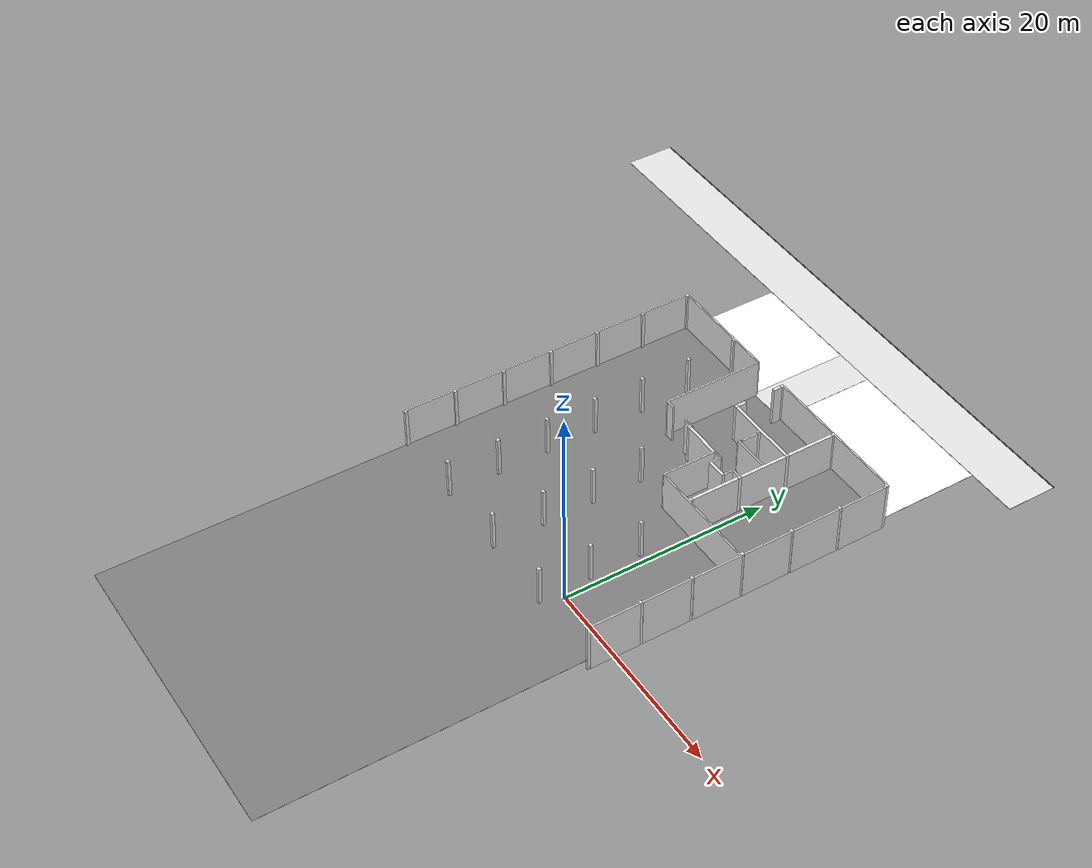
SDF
<sdf version="1.7">
 <model name="TYwalls">
  <pose>0 0 2.5 0 0 0</pose>
  <link name="Wall_E1">
   <pose>-18.75 27.6 0 0 0 0</pose>
   <collision name="Wall_E1_Collision"><geometry><box><size>7.2 0.15 5</size></box></geometry></collision>
   <visual name="Wall_E1_Visual">
    <geometry><box><size>7.2 0.15 5</size></box></geometry>
    <material>
     <ambient>0.9 0.9 0.9 1</ambient>
     <diffuse>0.9 0.9 0.9 1</diffuse>
     <specular>0.9 0.9 0.9 1</specular>
    </material>
    <meta><layer>0</layer></meta>
   </visual>
  </link>
  <link name="Wall_E2">
   <pose>-13.05 27.6 0 0 0 0</pose>
   <collision name="Wall_E2_Collision"><geometry><box><size>3.7 0.15 5</size></box></geometry></collision>
   <visual name="Wall_E2_Visual">
    <geometry><box><size>3.7 0.15 5</size></box></geometry>
    <material>
     <ambient>0.9 0.9 0.9 1</ambient>
     <diffuse>0.9 0.9 0.9 1</diffuse>
     <specular>0.9 0.9 0.9 1</specular>
    </material>
    <meta><layer>0</layer></meta>
   </visual>
  </link>
  <link name="Wall_E3">
   <pose>-3.75 27.6 0 0 0 0</pose>
   <collision name="Wall_E3_Collision"><geometry><box><size>7.2 0.15 5</size></box></geometry></collision>
   <visual name="Wall_E3_Visual">
    <geometry><box><size>7.2 0.15 5</size></box></geometry>
    <material>
     <ambient>0.9 0.9 0.9 1</ambient>
     <diffuse>0.9 0.9 0.9 1</diffuse>
     <specular>0.9 0.9 0.9 1</specular>
    </material>
    <meta><layer>0</layer></meta>
   </visual>
  </link>
  <link name="Wall_E4">
   <pose>3.75 27.6 0 0 0 0</pose>
   <collision name="Wall_E4_Collision"><geometry><box><size>7.2 0.15 5</size></box></geometry></collision>
   <visual name="Wall_E4_Visual">
    <geometry><box><size>7.2 0.15 5</size></box></geometry>
    <material>
     <ambient>0.9 0.9 0.9 1</ambient>
     <diffuse>0.9 0.9 0.9 1</diffuse>
     <specular>0.9 0.9 0.9 1</specular>
    </material>
    <meta><layer>0</layer></meta>
   </visual>
  </link>
  <link name="Wall_S1">
   <pose>7.6 25.0 0 0 0 1.5707</pose>
   <collision name="Wall_S1_Collision"><geometry><box><size>4.7 0.15 5</size></box></geometry></collision>
   <visual name="Wall_S1_Visual">
    <geometry><box><size>4.7 0.15 5</size></box></geometry>
    <material>
     <ambient>0.9 0.9 0.9 1</ambient>
     <diffuse>0.9 0.9 0.9 1</diffuse>
     <specular>0.9 0.9 0.9 1</specular>
    </material>
    <meta><layer>0</layer></meta>
   </visual>
  </link>
  <link name="Wall_S2">
   <pose>7.6 20 0 0 0 1.5707</pose>
   <collision name="Wall_S2_Collision"><geometry><box><size>4.8 0.15 5</size></box></geometry></collision>
   <visual name="Wall_S2_Visual">
    <geometry><box><size>4.8 0.15 5</size></box></geometry>
    <material>
     <ambient>0.9 0.9 0.9 1</ambient>
     <diffuse>0.9 0.9 0.9 1</diffuse>
     <specular>0.9 0.9 0.9 1</specular>
    </material>
    <meta><layer>0</layer></meta>
   </visual>
  </link>
  <link name="Wall_S3">
   <pose>7.6 15.0 0 0 0 1.5707</pose>
   <collision name="Wall_S3_Collision"><geometry><box><size>4.8 0.15 5</size></box></geometry></collision>
   <visual name="Wall_S3_Visual">
    <geometry><box><size>4.8 0.15 5</size></box></geometry>
    <material>
     <ambient>0.9 0.9 0.9 1</ambient>
     <diffuse>0.9 0.9 0.9 1</diffuse>
     <specular>0.9 0.9 0.9 1</specular>
    </material>
    <meta><layer>0</layer></meta>
   </visual>
  </link>
  <link name="Wall_S4">
   <pose>7.6 10.0 0 0 0 1.5707</pose>
   <collision name="Wall_S4_Collision"><geometry><box><size>4.8 0.15 5</size></box></geometry></collision>
   <visual name="Wall_S4_Visual">
    <geometry><box><size>4.8 0.15 5</size></box></geometry>
    <material>
     <ambient>0.9 0.9 0.9 1</ambient>
     <diffuse>0.9 0.9 0.9 1</diffuse>
     <specular>0.9 0.9 0.9 1</specular>
    </material>
    <meta><layer>0</layer></meta>
   </visual>
  </link>
  <link name="Wall_S5">
   <pose>7.6 5.0 0 0 0 1.5707</pose>
   <collision name="Wall_S5_Collision"><geometry><box><size>4.7 0.15 5</size></box></geometry></collision>
   <visual name="Wall_S5_Visual">
    <geometry><box><size>4.7 0.15 5</size></box></geometry>
    <material>
     <ambient>0.9 0.9 0.9 1</ambient>
     <diffuse>0.9 0.9 0.9 1</diffuse>
     <specular>0.9 0.9 0.9 1</specular>
    </material>
    <meta><layer>0</layer></meta>
   </visual>
  </link>
  <link name="Wall_S6">
   <pose>7.6 0 0 0 0 1.5707</pose>
   <collision name="Wall_S6_Collision"><geometry><box><size>4.8 0.15 5</size></box></geometry></collision>
   <visual name="Wall_S6_Visual">
    <geometry><box><size>4.8 0.15 5</size></box></geometry>
    <material>
     <ambient>0.9 0.9 0.9 1</ambient>
     <diffuse>0.9 0.9 0.9 1</diffuse>
     <specular>0.9 0.9 0.9 1</specular>
    </material>
    <meta><layer>0</layer></meta>
   </visual>
  </link>
  <link name="Wall_N1">
   <pose>-22.6 25.0 0 0 0 1.5707</pose>
   <collision name="Wall_N1_Collision"><geometry><box><size>4.7 0.15 5</size></box></geometry></collision>
   <visual name="Wall_N1_Visual">
    <geometry><box><size>4.7 0.15 5</size></box></geometry>
    <material>
     <ambient>0.9 0.9 0.9 1</ambient>
     <diffuse>0.9 0.9 0.9 1</diffuse>
     <specular>0.9 0.9 0.9 1</specular>
    </material>
    <meta><layer>0</layer></meta>
   </visual>
  </link>
  <link name="Wall_N2">
   <pose>-22.6 20 0 0 0 1.5707</pose>
   <collision name="Wall_N2_Collision"><geometry><box><size>4.8 0.15 5</size></box></geometry></collision>
   <visual name="Wall_N2_Visual">
    <geometry><box><size>4.8 0.15 5</size></box></geometry>
    <material>
     <ambient>0.9 0.9 0.9 1</ambient>
     <diffuse>0.9 0.9 0.9 1</diffuse>
     <specular>0.9 0.9 0.9 1</specular>
    </material>
    <meta><layer>0</layer></meta>
   </visual>
  </link>
  <link name="Wall_N3">
   <pose>-22.6 15.0 0 0 0 1.5707</pose>
   <collision name="Wall_N3_Collision"><geometry><box><size>4.8 0.15 5</size></box></geometry></collision>
   <visual name="Wall_N3_Visual">
    <geometry><box><size>4.8 0.15 5</size></box></geometry>
    <material>
     <ambient>0.9 0.9 0.9 1</ambient>
     <diffuse>0.9 0.9 0.9 1</diffuse>
     <specular>0.9 0.9 0.9 1</specular>
    </material>
    <meta><layer>0</layer></meta>
   </visual>
  </link>
  <link name="Wall_N4">
   <pose>-22.6 10.0 0 0 0 1.5707</pose>
   <collision name="Wall_N4_Collision"><geometry><box><size>4.8 0.15 5</size></box></geometry></collision>
   <visual name="Wall_N4_Visual">
    <geometry><box><size>4.8 0.15 5</size></box></geometry>
    <material>
     <ambient>0.9 0.9 0.9 1</ambient>
     <diffuse>0.9 0.9 0.9 1</diffuse>
     <specular>0.9 0.9 0.9 1</specular>
    </material>
    <meta><layer>0</layer></meta>
   </visual>
  </link>
  <link name="Wall_N5">
   <pose>-22.6 5.0 0 0 0 1.5707</pose>
   <collision name="Wall_N5_Collision"><geometry><box><size>4.7 0.15 5</size></box></geometry></collision>
   <visual name="Wall_N5_Visual">
    <geometry><box><size>4.7 0.15 5</size></box></geometry>
    <material>
     <ambient>0.9 0.9 0.9 1</ambient>
     <diffuse>0.9 0.9 0.9 1</diffuse>
     <specular>0.9 0.9 0.9 1</specular>
    </material>
    <meta><layer>0</layer></meta>
   </visual>
  </link>
  <link name="Wall_N6">
   <pose>-22.6 0 0 0 0 1.5707</pose>
   <collision name="Wall_N6_Collision"><geometry><box><size>4.8 0.15 5</size></box></geometry></collision>
   <visual name="Wall_N6_Visual">
    <geometry><box><size>4.8 0.15 5</size></box></geometry>
    <material>
     <ambient>0.9 0.9 0.9 1</ambient>
     <diffuse>0.9 0.9 0.9 1</diffuse>
     <specular>0.9 0.9 0.9 1</specular>
    </material>
    <meta><layer>0</layer></meta>
   </visual>
  </link>
  <link name="Wall_I07">
   <pose>-11.25 22.6 0 0 0 1.5707</pose>
   <collision name="Wall_I07_Collision"><geometry><box><size>9.9 0.15 5</size></box></geometry></collision>
   <visual name="Wall_I07_Visual">
    <geometry><box><size>9.9 0.15 5</size></box></geometry>
    <material>
     <ambient>0.9 0.9 0.9 1</ambient>
     <diffuse>0.9 0.9 0.9 1</diffuse>
     <specular>0.9 0.9 0.9 1</specular>
    </material>
    <meta><layer>0</layer></meta>
   </visual>
  </link>
  <link name="Wall_I08">
   <pose>-10.75 17.725 0 0 0 0</pose>
   <collision name="Wall_I08_Collision"><geometry><box><size>0.85 0.15 5</size></box></geometry></collision>
   <visual name="Wall_I08_Visual">
    <geometry><box><size>0.85 0.15 5</size></box></geometry>
    <material>
     <ambient>0.9 0.9 0.9 1</ambient>
     <diffuse>0.9 0.9 0.9 1</diffuse>
     <specular>0.9 0.9 0.9 1</specular>
    </material>
    <meta><layer>0</layer></meta>
   </visual>
  </link>
  <link name="Wall_I09">
   <pose>-7.9275 17.725 0 0 0 0</pose>
   <collision name="Wall_I09_Collision"><geometry><box><size>1.15 0.15 5</size></box></geometry></collision>
   <visual name="Wall_I09_Visual">
    <geometry><box><size>1.15 0.15 5</size></box></geometry>
    <material>
     <ambient>0.9 0.9 0.9 1</ambient>
     <diffuse>0.9 0.9 0.9 1</diffuse>
     <specular>0.9 0.9 0.9 1</specular>
    </material>
    <meta><layer>0</layer></meta>
   </visual>
  </link>
  <link name="Wall_I10">
   <pose>-5.525 17.5 0 0 0 0</pose>
   <collision name="Wall_I10_Collision"><geometry><box><size>3.675 0.3 5</size></box></geometry></collision>
   <visual name="Wall_I10_Visual">
    <geometry><box><size>3.675 0.3 5</size></box></geometry>
    <material>
     <ambient>0.9 0.9 0.9 1</ambient>
     <diffuse>0.9 0.9 0.9 1</diffuse>
     <specular>0.9 0.9 0.9 1</specular>
    </material>
    <meta><layer>0</layer></meta>
   </visual>
  </link>
  <link name="Wall_I11">
   <pose>-3.75 14.85 0 0 0 1.5707</pose>
   <collision name="Wall_I11_Collision"><geometry><box><size>5.3 0.15 5</size></box></geometry></collision>
   <visual name="Wall_I11_Visual">
    <geometry><box><size>5.3 0.15 5</size></box></geometry>
    <material>
     <ambient>0.9 0.9 0.9 1</ambient>
     <diffuse>0.9 0.9 0.9 1</diffuse>
     <specular>0.9 0.9 0.9 1</specular>
    </material>
    <meta><layer>0</layer></meta>
   </visual>
  </link>
  <link name="Wall_I12">
   <pose>1.925 12.275 0 0 0 0</pose>
   <collision name="Wall_I12_Collision"><geometry><box><size>11.575 0.15 5</size></box></geometry></collision>
   <visual name="Wall_I12_Visual">
    <geometry><box><size>11.475 0.15 5</size></box></geometry>
    <material>
     <ambient>0.9 0.9 0.9 1</ambient>
     <diffuse>0.9 0.9 0.9 1</diffuse>
     <specular>0.9 0.9 0.9 1</specular>
    </material>
    <meta><layer>0</layer></meta>
   </visual>
  </link>
  <link name="Wall_I13">
   <pose>-7.5 26.925 0 0 0 1.5707</pose>
   <collision name="Wall_I13_Collision"><geometry><box><size>0.85 0.3 5</size></box></geometry></collision>
   <visual name="Wall_I13_Visual">
    <geometry><box><size>0.85 0.3 5</size></box></geometry>
    <material>
     <ambient>0.9 0.9 0.9 1</ambient>
     <diffuse>0.9 0.9 0.9 1</diffuse>
     <specular>0.9 0.9 0.9 1</specular>
    </material>
    <meta><layer>0</layer></meta>
   </visual>
  </link>
  <link name="Wall_I14">
   <pose>-7.5 23.075 0 0 0 1.5707</pose>
   <collision name="Wall_I14_Collision"><geometry><box><size>0.85 0.3 5</size></box></geometry></collision>
   <visual name="Wall_I14_Visual">
    <geometry><box><size>0.85 0.3 5</size></box></geometry>
    <material>
     <ambient>0.9 0.9 0.9 1</ambient>
     <diffuse>0.9 0.9 0.9 1</diffuse>
     <specular>0.9 0.9 0.9 1</specular>
    </material>
    <meta><layer>0</layer></meta>
   </visual>
  </link>
  <link name="Wall_I15">
   <pose>-3.75 22.5 0 0 0 0</pose>
   <collision name="Wall_I15_Collision"><geometry><box><size>7.2 0.3 5</size></box></geometry></collision>
   <visual name="Wall_I15_Visual">
    <geometry><box><size>7.2 0.3 5</size></box></geometry>
    <material>
     <ambient>0.9 0.9 0.9 1</ambient>
     <diffuse>0.9 0.9 0.9 1</diffuse>
     <specular>0.9 0.9 0.9 1</specular>
    </material>
    <meta><layer>0</layer></meta>
   </visual>
  </link>
  <link name="Wall_I16">
   <pose>0 25 0 0 0 1.5705</pose>
   <collision name="Wall_I16_Collision"><geometry><box><size>4.7 0.3 5</size></box></geometry></collision>
   <visual name="Wall_I16_Visual">
    <geometry><box><size>4.7 0.3 5</size></box></geometry>
    <material>
     <ambient>0.9 0.9 0.9 1</ambient>
     <diffuse>0.9 0.9 0.9 1</diffuse>
     <specular>0.9 0.9 0.9 1</specular>
    </material>
    <meta><layer>0</layer></meta>
   </visual>
  </link>
  <link name="Wall_I17">
   <pose>0 20 0 0 0 1.5705</pose>
   <collision name="Wall_I17_Collision"><geometry><box><size>4.7 0.3 5</size></box></geometry></collision>
   <visual name="Wall_I17_Visual">
    <geometry><box><size>4.7 0.3 5</size></box></geometry>
    <material>
     <ambient>0.9 0.9 0.9 1</ambient>
     <diffuse>0.9 0.9 0.9 1</diffuse>
     <specular>0.9 0.9 0.9 1</specular>
    </material>
    <meta><layer>0</layer></meta>
   </visual>
  </link>
  <link name="Wall_I18">
   <pose>0 15 0 0 0 1.5705</pose>
   <collision name="Wall_I18_Collision"><geometry><box><size>4.7 0.3 5</size></box></geometry></collision>
   <visual name="Wall_I18_Visual">
    <geometry><box><size>4.7 0.3 5</size></box></geometry>
    <material>
     <ambient>0.9 0.9 0.9 1</ambient>
     <diffuse>0.9 0.9 0.9 1</diffuse>
     <specular>0.9 0.9 0.9 1</specular>
    </material>
    <meta><layer>0</layer></meta>
   </visual>
  </link>
  <link name="Wall_I19">
   <pose>-3.225 17.575 0 0 0 0</pose>
   <collision name="Wall_I19_Collision"><geometry><box><size>1.0 0.15 5</size></box></geometry></collision>
   <visual name="Wall_I19_Visual">
    <geometry><box><size>1.0 0.15 5</size></box></geometry>
    <material>
     <ambient>0.9 0.9 0.9 1</ambient>
     <diffuse>0.9 0.9 0.9 1</diffuse>
     <specular>0.9 0.9 0.9 1</specular>
    </material>
    <meta><layer>0</layer></meta>
   </visual>
  </link>
  <link name="Wall_I20">
   <pose>-0.575 17.575 0 0 0 0</pose>
   <collision name="Wall_I20_Collision"><geometry><box><size>1.0 0.15 5</size></box></geometry></collision>
   <visual name="Wall_I20_Visual">
    <geometry><box><size>1.0 0.15 5</size></box></geometry>
    <material>
     <ambient>0.9 0.9 0.9 1</ambient>
     <diffuse>0.9 0.9 0.9 1</diffuse>
     <specular>0.9 0.9 0.9 1</specular>
    </material>
    <meta><layer>0</layer></meta>
   </visual>
  </link>
  <link name="Wall_I21">
   <pose>-1.9 16.5 0 0 0 0</pose>
   <collision name="Wall_I21_Collision"><geometry><box><size>1.95 0.15 5</size></box></geometry></collision>
   <visual name="Wall_I21_Visual">
    <geometry><box><size>1.95 0.3 5</size></box></geometry>
    <material>
     <ambient>0.9 0.9 0.9 1</ambient>
     <diffuse>0.9 0.9 0.9 1</diffuse>
     <specular>0.9 0.9 0.9 1</specular>
    </material>
    <meta><layer>0</layer></meta>
   </visual>
  </link>
  <link name="Wall_I22">
   <pose>-1 17.0 0 0 0 1.5707</pose>
   <collision name="Wall_I22_Collision"><geometry><box><size>1.0 0.15 5</size></box></geometry></collision>
   <visual name="Wall_I22_Visual">
    <geometry><box><size>1.0 0.15 5</size></box></geometry>
    <material>
     <ambient>0.9 0.9 0.9 1</ambient>
     <diffuse>0.9 0.9 0.9 1</diffuse>
     <specular>0.9 0.9 0.9 1</specular>
    </material>
    <meta><layer>0</layer></meta>
   </visual>
  </link>
  <link name="Wall_I23">
   <pose>-2.8 17.0 0 0 0 1.5707</pose>
   <collision name="Wall_I23_Collision"><geometry><box><size>1.0 0.15 5</size></box></geometry></collision>
   <visual name="Wall_I23_Visual">
    <geometry><box><size>1.0 0.15 5</size></box></geometry>
    <material>
     <ambient>0.9 0.9 0.9 1</ambient>
     <diffuse>0.9 0.9 0.9 1</diffuse>
     <specular>0.9 0.9 0.9 1</specular>
    </material>
    <meta><layer>0</layer></meta>
   </visual>
  </link>
  <link name="Wall_I24">
   <pose>-3.75 22.175 0 0 0 1.5707</pose>
   <collision name="Wall_I24_Collision"><geometry><box><size>0.35 0.15 5</size></box></geometry></collision>
   <visual name="Wall_I24_Visual">
    <geometry><box><size>0.35 0.15 5</size></box></geometry>
    <material>
     <ambient>0.9 0.9 0.9 1</ambient>
     <diffuse>0.9 0.9 0.9 1</diffuse>
     <specular>0.9 0.9 0.9 1</specular>
    </material>
    <meta><layer>0</layer></meta>
   </visual>
  </link>
  <link name="Wall_I25">
   <pose>-3.6 21.15 0 0 0 1.5707</pose>
   <collision name="Wall_I25_Collision"><geometry><box><size>1.65 0.15 5</size></box></geometry></collision>
   <visual name="Wall_I25_Visual">
    <geometry><box><size>1.65 0.15 5</size></box></geometry>
    <material>
     <ambient>0.9 0.9 0.9 1</ambient>
     <diffuse>0.9 0.9 0.9 1</diffuse>
     <specular>0.9 0.9 0.9 1</specular>
    </material>
    <meta><layer>0</layer></meta>
   </visual>
  </link>
  <link name="Wall_I26">
   <pose>-3.75 20.175 0 0 0 1.5707</pose>
   <collision name="Wall_I26_Collision"><geometry><box><size>0.35 0.15 5</size></box></geometry></collision>
   <visual name="Wall_I26_Visual">
    <geometry><box><size>0.35 0.15 5</size></box></geometry>
    <material>
     <ambient>0.9 0.9 0.9 1</ambient>
     <diffuse>0.9 0.9 0.9 1</diffuse>
     <specular>0.9 0.9 0.9 1</specular>
    </material>
    <meta><layer>0</layer></meta>
   </visual>
  </link>
  <link name="Wall_I27">
   <pose>-1.875 20.075 0 0 0 0</pose>
   <collision name="Wall_I27_Collision"><geometry><box><size>3.75 0.15 5</size></box></geometry></collision>
   <visual name="Wall_I27_Visual">
    <geometry><box><size>3.75 0.15 5</size></box></geometry>
    <material>
     <ambient>0.9 0.9 0.9 1</ambient>
     <diffuse>0.9 0.9 0.9 1</diffuse>
     <specular>0.9 0.9 0.9 1</specular>
    </material>
    <meta><layer>0</layer></meta>
   </visual>
  </link>
  <link name="column_01">
   <pose>-22.5 27.5 0 0 0 0</pose>
   <visual name="column_01_visual">
    <geometry><box><size>0.3 0.3 5</size></box></geometry>
    <material>
     <ambient>0.9 0.9 0.9 1</ambient>
     <diffuse>0.9 0.9 0.9 1</diffuse>
     <specular>0.9 0.9 0.9 1</specular>
    </material>
    <meta><layer>0</layer></meta>
   </visual>
   <collision name="collision"><geometry><box><size>0.3 0.3 5</size></box></geometry></collision>
  </link>
  <link name="column_02">
   <pose>-15.0 27.5 0 0 0 0</pose>
   <visual name="column_02_visual">
    <geometry><box><size>0.3 0.3 5</size></box></geometry>
    <material>
     <ambient>0.9 0.9 0.9 1</ambient>
     <diffuse>0.9 0.9 0.9 1</diffuse>
     <specular>0.9 0.9 0.9 1</specular>
    </material>
    <meta><layer>0</layer></meta>
   </visual>
   <collision name="collision"><geometry><box><size>0.3 0.3 5</size></box></geometry></collision>
  </link>
  <link name="column_03">
   <pose>-7.5 27.5 0 0 0 0</pose>
   <visual name="column_03_visual">
    <geometry><box><size>0.3 0.3 5</size></box></geometry>
    <material>
     <ambient>0.9 0.9 0.9 1</ambient>
     <diffuse>0.9 0.9 0.9 1</diffuse>
     <specular>0.9 0.9 0.9 1</specular>
    </material>
    <meta><layer>0</layer></meta>
   </visual>
   <collision name="collision"><geometry><box><size>0.3 0.3 5</size></box></geometry></collision>
  </link>
  <link name="column_04">
   <pose>0 27.5 0 0 0 0</pose>
   <visual name="column_04_visual">
    <geometry><box><size>0.3 0.3 5</size></box></geometry>
    <material>
     <ambient>0.9 0.9 0.9 1</ambient>
     <diffuse>0.9 0.9 0.9 1</diffuse>
     <specular>0.9 0.9 0.9 1</specular>
    </material>
    <meta><layer>0</layer></meta>
   </visual>
   <collision name="collision"><geometry><box><size>0.3 0.3 5</size></box></geometry></collision>
  </link>
  <link name="column_05">
   <pose>7.5 27.5 0 0 -0 0</pose>
   <visual name="column_00_visual">
    <geometry><box><size>0.3 0.3 5</size></box></geometry>
    <material>
     <ambient>0.9 0.9 0.9 1</ambient>
     <diffuse>0.9 0.9 0.9 1</diffuse>
     <specular>0.9 0.9 0.9 1</specular>
    </material>
    <meta><layer>0</layer></meta>
   </visual>
   <collision name="collision"><geometry><box><size>0.3 0.3 5</size></box></geometry></collision>
  </link>
  <link name="column_07">
   <pose>-22.5 22.5 0 0 0 0</pose>
   <visual name="column_07_visual">
    <geometry><box><size>0.3 0.3 5</size></box></geometry>
    <material>
     <ambient>0.9 0.9 0.9 1</ambient>
     <diffuse>0.9 0.9 0.9 1</diffuse>
     <specular>0.9 0.9 0.9 1</specular>
    </material>
    <meta><layer>0</layer></meta>
   </visual>
   <collision name="collision"><geometry><box><size>0.3 0.3 5</size></box></geometry></collision>
  </link>
  <link name="column_08">
   <pose>-15.0 22.5 0 0 0 0</pose>
   <visual name="column_08_visual">
    <geometry><box><size>0.3 0.3 5</size></box></geometry>
    <material>
     <ambient>0.9 0.9 0.9 1</ambient>
     <diffuse>0.9 0.9 0.9 1</diffuse>
     <specular>0.9 0.9 0.9 1</specular>
    </material>
    <meta><layer>0</layer></meta>
   </visual>
   <collision name="collision"><geometry><box><size>0.3 0.3 5</size></box></geometry></collision>
  </link>
  <link name="column_09">
   <pose>-7.5 22.5 0 0 0 0</pose>
   <visual name="column_09_visual">
    <geometry><box><size>0.3 0.3 5</size></box></geometry>
    <material>
     <ambient>0.9 0.9 0.9 1</ambient>
     <diffuse>0.9 0.9 0.9 1</diffuse>
     <specular>0.9 0.9 0.9 1</specular>
    </material>
    <meta><layer>0</layer></meta>
   </visual>
   <collision name="collision"><geometry><box><size>0.3 0.3 5</size></box></geometry></collision>
  </link>
  <link name="column_10">
   <pose>0 22.5 0 0 0 0</pose>
   <visual name="column_010_visual">
    <geometry><box><size>0.3 0.3 5</size></box></geometry>
    <material>
     <ambient>0.9 0.9 0.9 1</ambient>
     <diffuse>0.9 0.9 0.9 1</diffuse>
     <specular>0.9 0.9 0.9 1</specular>
    </material>
    <meta><layer>0</layer></meta>
   </visual>
   <collision name="collision"><geometry><box><size>0.3 0.3 5</size></box></geometry></collision>
  </link>
  <link name="column_11">
   <pose>7.5 22.5 0 0 -0 0</pose>
   <visual name="column_11_visual">
    <geometry><box><size>0.3 0.3 5</size></box></geometry>
    <material>
     <ambient>0.9 0.9 0.9 1</ambient>
     <diffuse>0.9 0.9 0.9 1</diffuse>
     <specular>0.9 0.9 0.9 1</specular>
    </material>
    <meta><layer>0</layer></meta>
   </visual>
   <collision name="collision"><geometry><box><size>0.3 0.3 5</size></box></geometry></collision>
  </link>
  <link name="column_13">
   <pose>-22.5 17.5 0 0 0 0</pose>
   <visual name="column_13_visual">
    <geometry><box><size>0.3 0.3 5</size></box></geometry>
    <material>
     <ambient>0.9 0.9 0.9 1</ambient>
     <diffuse>0.9 0.9 0.9 1</diffuse>
     <specular>0.9 0.9 0.9 1</specular>
    </material>
    <meta><layer>0</layer></meta>
   </visual>
   <collision name="collision"><geometry><box><size>0.3 0.3 5</size></box></geometry></collision>
  </link>
  <link name="column_14">
   <pose>-15.0 17.5 0 0 0 0</pose>
   <visual name="column_14_visual">
    <geometry><box><size>0.3 0.3 5</size></box></geometry>
    <material>
     <ambient>0.9 0.9 0.9 1</ambient>
     <diffuse>0.9 0.9 0.9 1</diffuse>
     <specular>0.9 0.9 0.9 1</specular>
    </material>
    <meta><layer>0</layer></meta>
   </visual>
   <collision name="collision"><geometry><box><size>0.3 0.3 5</size></box></geometry></collision>
  </link>
  <link name="column_15">
   <pose>-7.5 17.5 0 0 0 0</pose>
   <visual name="column_15_visual">
    <geometry><box><size>0.3 0.3 5</size></box></geometry>
    <material>
     <ambient>0.9 0.9 0.9 1</ambient>
     <diffuse>0.9 0.9 0.9 1</diffuse>
     <specular>0.9 0.9 0.9 1</specular>
    </material>
    <meta><layer>0</layer></meta>
   </visual>
   <collision name="collision"><geometry><box><size>0.3 0.3 5</size></box></geometry></collision>
  </link>
  <link name="column_16">
   <pose>0 17.5 0 0 0 0</pose>
   <visual name="column_16_visual">
    <geometry><box><size>0.3 0.3 5</size></box></geometry>
    <material>
     <ambient>0.9 0.9 0.9 1</ambient>
     <diffuse>0.9 0.9 0.9 1</diffuse>
     <specular>0.9 0.9 0.9 1</specular>
    </material>
    <meta><layer>0</layer></meta>
   </visual>
   <collision name="collision"><geometry><box><size>0.3 0.3 5</size></box></geometry></collision>
  </link>
  <link name="column_17">
   <pose>7.5 17.5 0 0 -0 0</pose>
   <visual name="column_17_visual">
    <geometry><box><size>0.3 0.3 5</size></box></geometry>
    <material>
     <ambient>0.9 0.9 0.9 1</ambient>
     <diffuse>0.9 0.9 0.9 1</diffuse>
     <specular>0.9 0.9 0.9 1</specular>
    </material>
    <meta><layer>0</layer></meta>
   </visual>
   <collision name="collision"><geometry><box><size>0.3 0.3 5</size></box></geometry></collision>
  </link>
  <link name="column_19">
   <pose>-22.5 12.5 0 0 0 0</pose>
   <visual name="column_19_visual">
    <geometry><box><size>0.3 0.3 5</size></box></geometry>
    <material>
     <ambient>0.9 0.9 0.9 1</ambient>
     <diffuse>0.9 0.9 0.9 1</diffuse>
     <specular>0.9 0.9 0.9 1</specular>
    </material>
    <meta><layer>0</layer></meta>
   </visual>
   <collision name="collision"><geometry><box><size>0.3 0.3 5</size></box></geometry></collision>
  </link>
  <link name="column_20">
   <pose>-15.0 12.5 0 0 0 0</pose>
   <visual name="column_20_visual">
    <geometry><box><size>0.3 0.3 5</size></box></geometry>
    <material>
     <ambient>0.9 0.9 0.9 1</ambient>
     <diffuse>0.9 0.9 0.9 1</diffuse>
     <specular>0.9 0.9 0.9 1</specular>
    </material>
    <meta><layer>0</layer></meta>
   </visual>
   <collision name="collision"><geometry><box><size>0.3 0.3 5</size></box></geometry></collision>
  </link>
  <link name="column_21">
   <pose>-7.5 12.5 0 0 0 0</pose>
   <visual name="column_21_visual">
    <geometry><box><size>0.3 0.3 5</size></box></geometry>
    <material>
     <ambient>0.9 0.9 0.9 1</ambient>
     <diffuse>0.9 0.9 0.9 1</diffuse>
     <specular>0.9 0.9 0.9 1</specular>
    </material>
    <meta><layer>0</layer></meta>
   </visual>
   <collision name="collision"><geometry><box><size>0.3 0.3 5</size></box></geometry></collision>
  </link>
  <link name="column_22">
   <pose>0 12.5 0 0 0 0</pose>
   <visual name="column_22_visual">
    <geometry><box><size>0.3 0.3 5</size></box></geometry>
    <material>
     <ambient>0.9 0.9 0.9 1</ambient>
     <diffuse>0.9 0.9 0.9 1</diffuse>
     <specular>0.9 0.9 0.9 1</specular>
    </material>
    <meta><layer>0</layer></meta>
   </visual>
   <collision name="collision"><geometry><box><size>0.3 0.3 5</size></box></geometry></collision>
  </link>
  <link name="column_23">
   <pose>7.5 12.5 0 0 -0 0</pose>
   <visual name="column_23_visual">
    <geometry><box><size>0.3 0.3 5</size></box></geometry>
    <material>
     <ambient>0.9 0.9 0.9 1</ambient>
     <diffuse>0.9 0.9 0.9 1</diffuse>
     <specular>0.9 0.9 0.9 1</specular>
    </material>
    <meta><layer>0</layer></meta>
   </visual>
   <collision name="collision"><geometry><box><size>0.3 0.3 5</size></box></geometry></collision>
  </link>
  <link name="column_25">
   <pose>-22.5 7.5 0 0 0 0</pose>
   <visual name="column_25_visual">
    <geometry><box><size>0.3 0.3 5</size></box></geometry>
    <material>
     <ambient>0.9 0.9 0.9 1</ambient>
     <diffuse>0.9 0.9 0.9 1</diffuse>
     <specular>0.9 0.9 0.9 1</specular>
    </material>
    <meta><layer>0</layer></meta>
   </visual>
   <collision name="collision"><geometry><box><size>0.3 0.3 5</size></box></geometry></collision>
  </link>
  <link name="column_26">
   <pose>-15.0 7.5 0 0 0 0</pose>
   <visual name="column_26_visual">
    <geometry><box><size>0.3 0.3 5</size></box></geometry>
    <material>
     <ambient>0.9 0.9 0.9 1</ambient>
     <diffuse>0.9 0.9 0.9 1</diffuse>
     <specular>0.9 0.9 0.9 1</specular>
    </material>
    <meta><layer>0</layer></meta>
   </visual>
   <collision name="collision"><geometry><box><size>0.3 0.3 5</size></box></geometry></collision>
  </link>
  <link name="column_27">
   <pose>-7.5 7.5 0 0 0 0</pose>
   <visual name="column_27_visual">
    <geometry><box><size>0.3 0.3 5</size></box></geometry>
    <material>
     <ambient>0.9 0.9 0.9 1</ambient>
     <diffuse>0.9 0.9 0.9 1</diffuse>
     <specular>0.9 0.9 0.9 1</specular>
    </material>
    <meta><layer>0</layer></meta>
   </visual>
   <collision name="collision"><geometry><box><size>0.3 0.3 5</size></box></geometry></collision>
  </link>
  <link name="column_28">
   <pose>0 7.5 0 0 0 0</pose>
   <visual name="column_28_visual">
    <geometry><box><size>0.3 0.3 5</size></box></geometry>
    <material>
     <ambient>0.9 0.9 0.9 1</ambient>
     <diffuse>0.9 0.9 0.9 1</diffuse>
     <specular>0.9 0.9 0.9 1</specular>
    </material>
    <meta><layer>0</layer></meta>
   </visual>
   <collision name="collision"><geometry><box><size>0.3 0.3 5</size></box></geometry></collision>
  </link>
  <link name="column_29">
   <pose>7.5 7.5 0 0 -0 0</pose>
   <visual name="column_29_visual">
    <geometry><box><size>0.3 0.3 5</size></box></geometry>
    <material>
     <ambient>0.9 0.9 0.9 1</ambient>
     <diffuse>0.9 0.9 0.9 1</diffuse>
     <specular>0.9 0.9 0.9 1</specular>
    </material>
    <meta><layer>0</layer></meta>
   </visual>
   <collision name="collision"><geometry><box><size>0.3 0.3 5</size></box></geometry></collision>
  </link>
  <link name="column_31">
   <pose>-22.5 2.5 0 0 0 0</pose>
   <visual name="column_31_visual">
    <geometry><box><size>0.3 0.3 5</size></box></geometry>
    <material>
     <ambient>0.9 0.9 0.9 1</ambient>
     <diffuse>0.9 0.9 0.9 1</diffuse>
     <specular>0.9 0.9 0.9 1</specular>
    </material>
    <meta><layer>0</layer></meta>
   </visual>
   <collision name="collision"><geometry><box><size>0.3 0.3 5</size></box></geometry></collision>
  </link>
  <link name="column_32">
   <pose>-15.0 2.5 0 0 0 0</pose>
   <visual name="column_32_visual">
    <geometry><box><size>0.3 0.3 5</size></box></geometry>
    <material>
     <ambient>0.9 0.9 0.9 1</ambient>
     <diffuse>0.9 0.9 0.9 1</diffuse>
     <specular>0.9 0.9 0.9 1</specular>
    </material>
    <meta><layer>0</layer></meta>
   </visual>
   <collision name="collision"><geometry><box><size>0.3 0.3 5</size></box></geometry></collision>
  </link>
  <link name="column_33">
   <pose>-7.5 2.5 0 0 0 0</pose>
   <visual name="column_33_visual">
    <geometry><box><size>0.3 0.3 5</size></box></geometry>
    <material>
     <ambient>0.9 0.9 0.9 1</ambient>
     <diffuse>0.9 0.9 0.9 1</diffuse>
     <specular>0.9 0.9 0.9 1</specular>
    </material>
    <meta><layer>0</layer></meta>
   </visual>
   <collision name="collision"><geometry><box><size>0.3 0.3 5</size></box></geometry></collision>
  </link>
  <link name="column_34">
   <pose>0 2.5 0 0 0 0</pose>
   <visual name="column_34_visual">
    <geometry><box><size>0.3 0.3 5</size></box></geometry>
    <material>
     <ambient>0.9 0.9 0.9 1</ambient>
     <diffuse>0.9 0.9 0.9 1</diffuse>
     <specular>0.9 0.9 0.9 1</specular>
    </material>
    <meta><layer>0</layer></meta>
   </visual>
   <collision name="collision"><geometry><box><size>0.3 0.3 5</size></box></geometry></collision>
  </link>
  <link name="column_35">
   <pose>7.5 2.5 0 0 -0 0</pose>
   <visual name="column_35_visual">
    <geometry><box><size>0.3 0.3 5</size></box></geometry>
    <material>
     <ambient>0.9 0.9 0.9 1</ambient>
     <diffuse>0.9 0.9 0.9 1</diffuse>
     <specular>0.9 0.9 0.9 1</specular>
    </material>
    <meta><layer>0</layer></meta>
   </visual>
   <collision name="collision"><geometry><box><size>0.3 0.3 5</size></box></geometry></collision>
  </link>
  <link name="column_41">
   <pose>7.5 -2.5 0 0 -0 0</pose>
   <visual name="column_41_visual">
    <geometry><box><size>0.3 0.3 5</size></box></geometry>
    <material>
     <ambient>0.9 0.9 0.9 1</ambient>
     <diffuse>0.9 0.9 0.9 1</diffuse>
     <specular>0.9 0.9 0.9 1</specular>
    </material>
    <meta><layer>0</layer></meta>
   </visual>
   <collision name="collision"><geometry><box><size>0.3 0.3 5</size></box></geometry></collision>
  </link>
  <link name="column_43">
   <pose>-22.5 -2.5 0 0 0 0</pose>
   <visual name="column_43_visual">
    <geometry><box><size>0.3 0.3 5</size></box></geometry>
    <material>
     <ambient>0.9 0.9 0.9 1</ambient>
     <diffuse>0.9 0.9 0.9 1</diffuse>
     <specular>0.9 0.9 0.9 1</specular>
    </material>
    <meta><layer>0</layer></meta>
   </visual>
   <collision name="collision"><geometry><box><size>0.3 0.3 5</size></box></geometry></collision>
  </link>
  <link name="column_44">
   <pose>-15.0 -2.5 0 0 0 0</pose>
   <visual name="column_44_visual">
    <geometry><box><size>0.3 0.3 5</size></box></geometry>
    <material>
     <ambient>0.9 0.9 0.9 1</ambient>
     <diffuse>0.9 0.9 0.9 1</diffuse>
     <specular>0.9 0.9 0.9 1</specular>
    </material>
    <meta><layer>0</layer></meta>
   </visual>
   <collision name="collision"><geometry><box><size>0.3 0.3 5</size></box></geometry></collision>
  </link>
  <link name="column_45">
   <pose>-7.5 -2.5 0 0 0 0</pose>
   <visual name="column_45_visual">
    <geometry><box><size>0.3 0.3 5</size></box></geometry>
    <material>
     <ambient>0.9 0.9 0.9 1</ambient>
     <diffuse>0.9 0.9 0.9 1</diffuse>
     <specular>0.9 0.9 0.9 1</specular>
    </material>
    <meta><layer>0</layer></meta>
   </visual>
   <collision name="collision"><geometry><box><size>0.3 0.3 5</size></box></geometry></collision>
  </link>
  <link name="column_46">
   <pose>0 -2.5 0 0 0 0</pose>
   <visual name="column_46_visual">
    <geometry><box><size>0.3 0.3 5</size></box></geometry>
    <material>
     <ambient>0.9 0.9 0.9 1</ambient>
     <diffuse>0.9 0.9 0.9 1</diffuse>
     <specular>0.9 0.9 0.9 1</specular>
    </material>
    <meta><layer>0</layer></meta>
   </visual>
   <collision name="collision"><geometry><box><size>0.3 0.3 5</size></box></geometry></collision>
  </link>
  <link name="column_47">
   <pose>7.5 -2.5 0 0 -0 0</pose>
   <visual name="column_47_visual">
    <geometry><box><size>0.3 0.3 5</size></box></geometry>
    <material>
     <ambient>0.9 0.9 0.9 1</ambient>
     <diffuse>0.9 0.9 0.9 1</diffuse>
     <specular>0.9 0.9 0.9 1</specular>
    </material>
    <meta><layer>0</layer></meta>
   </visual>
   <collision name="collision"><geometry><box><size>0.3 0.3 5</size></box></geometry></collision>
  </link>
  <link name="floor_02">
   <pose>-7.5 -2.5 -1.49 0 0 0</pose>
   <visual name="floor_02_visual">
    <geometry><box><size>30.0 60.0 0.02</size></box></geometry>
    <material>
     <ambient>0.5 0.5 0.5 1</ambient>
     <diffuse>0.5 0.5 0.5 1</diffuse>
     <specular>0.5 0.5 0.5 1</specular>
    </material>
    <meta><layer>0</layer></meta>
   </visual>
   <collision name="collision"><geometry><box><size>30.0 60.0 0.02</size></box></geometry></collision>
  </link>
  <link name="grass_side">
   <pose>-7.5 32.5 -1.50 0 0 0</pose>
   <visual name="grass_side_visual">
    <geometry><box><size>30.0 10.0 0.02</size></box></geometry>
    <material>
     <diffuse>1.0 1.0 1.0</diffuse>
     <specular>1.0 1.0 1.0</specular>
     <pbr>
      <metal>
       <albedo_map>materials/textures/grass.jpg</albedo_map>
       <normal_map>materials/textures/grass.jpg</normal_map>
      </metal>
     </pbr>
    </material>
    <meta><layer>0</layer></meta>
   </visual>
   <collision name="collision"><geometry><box><size>30.0 10.0 0.02</size></box></geometry></collision>
  </link>
  <link name="path_side_entrance">
   <pose>-9.5 32.5 -1.48 0 0 0</pose>
   <visual name="path_side_entrance_visual">
    <geometry><box><size>4.0 10.0 0.02</size></box></geometry>
    <material>
     <ambient>0.9 0.9 0.9 1</ambient>
     <diffuse>0.9 0.9 0.9 1</diffuse>
     <specular>0.9 0.9 0.9 1</specular>
    </material>
    <meta><layer>0</layer></meta>
   </visual>
   <collision name="collision"><geometry><box><size>4.0 10.0 0.02</size></box></geometry></collision>
  </link>
  <link name="sidewalk_side_entrance">
   <pose>-17.5 40.0 -1.48 0 0 0</pose>
   <visual name="sidewalk_side_entrance_visual">
    <geometry><box><size>60.0 5.0 0.02</size></box></geometry>
    <material>
     <ambient>0.9 0.9 0.9 1</ambient>
     <diffuse>0.9 0.9 0.9 1</diffuse>
     <specular>0.9 0.9 0.9 1</specular>
    </material>
    <meta><layer>0</layer></meta>
   </visual>
   <collision name="collision"><geometry><box><size>60.0 5.0 0.02</size></box></geometry></collision>
  </link>
  <link name="sidewalk_side_entrance_step">
   <pose>-17.5 42.5 -1.51 0 0 0</pose>
   <visual name="sidewalk_side_entrance_step_visual">
    <geometry><box><size>60.0 0.1 0.1</size></box></geometry>
    <material>
     <ambient>0.3 0.3 0.3 1</ambient>
     <diffuse>0.3 0.3 0.3 1</diffuse>
     <specular>0.3 0.3 0.3 1</specular>
    </material>
    <meta><layer>0</layer></meta>
   </visual>
   <collision name="collision"><geometry><box><size>60.0 0.1 0.1</size></box></geometry></collision>
  </link>
  <static>1</static>
 </model>
</sdf>
